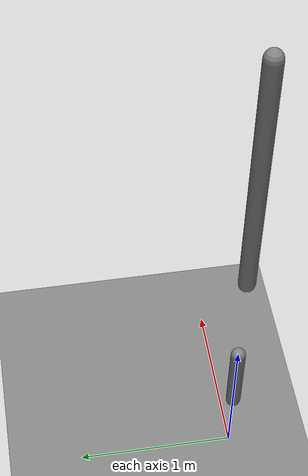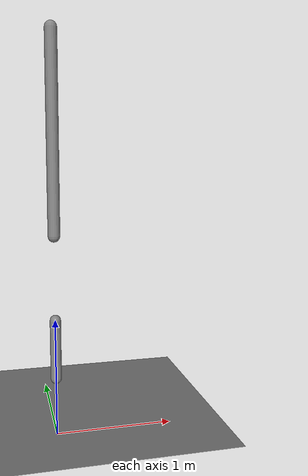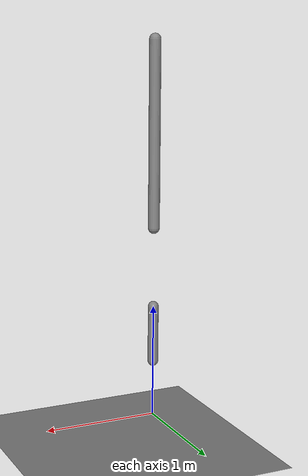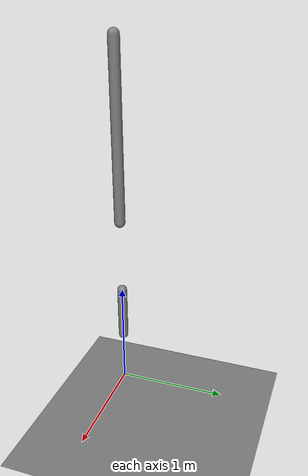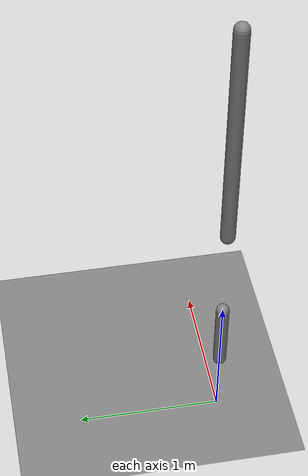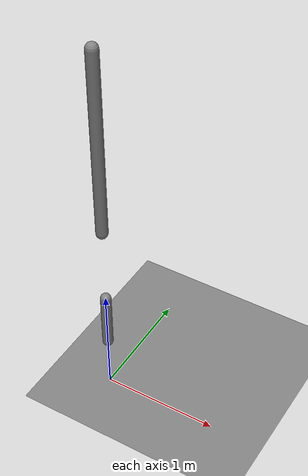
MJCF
<mujoco model="2d_cheetah">
    <compiler angle="degree" coordinate="local" inertiafromgeom="true" settotalmass="14"/>

    <option timestep="0.001" gravity="0 0 -9.81"/>

    <worldbody>
        <light cutoff="100" diffuse="1 1 1" dir="-0 0 -1.3" directional="true" exponent="1" pos="0 0 1.3" specular=".1 .1 .1"/>

        <!-- Ground -->
        <geom name="ground" type="plane" pos="0 0 0" size="40 40 1" condim="3"/>

        <!-- Body of the cheetah -->
        <body name="torso" pos="0 0 0.5">
            <joint axis="0 1 0" damping="6" name="torso" pos="0 0 0" stiffness="240" type="hinge"/>
            <geom fromto="0 0 0 0 0 0.5 " name="torso" size="0.046" type="capsule"/>
            <body name="bthigh" pos="0 0 2">
                <joint axis="0 1 0" damping="6" name="bthigh" pos="0 0 -1" stiffness="240" type="hinge"/>
                <geom  name="bthigh" pos="0 0 0" size="0.05 0.8" type="capsule"/>
            </body>
        </body>

    </worldbody>

    <actuator>
        <position kp="1000" joint="torso" name="torso_p"/>
        <position kp="1000" joint="bthigh" name="bthigh_p"/>
        <velocity kv="1000" joint="torso" name="torso_v"/>
        <velocity kv="1000" joint="bthigh" name="bthigh_v"/>
    </actuator>
</mujoco>
